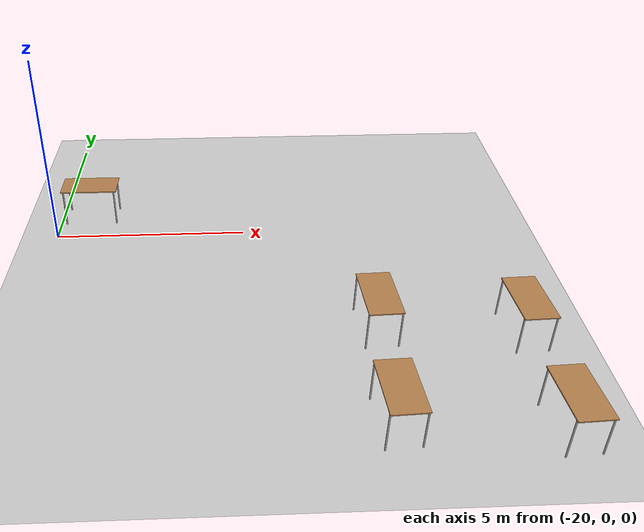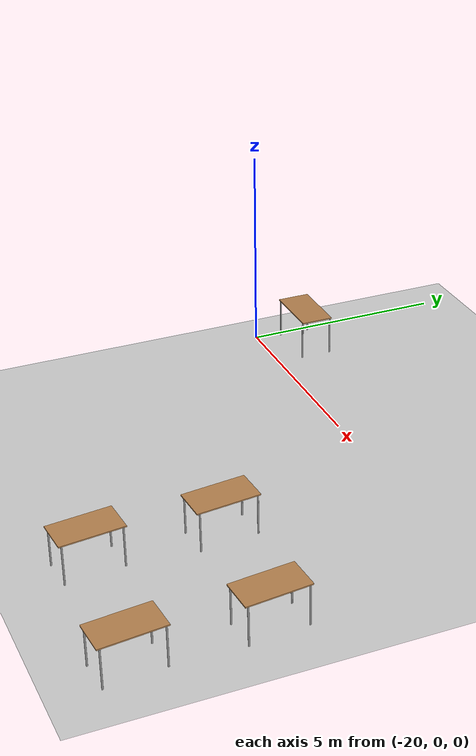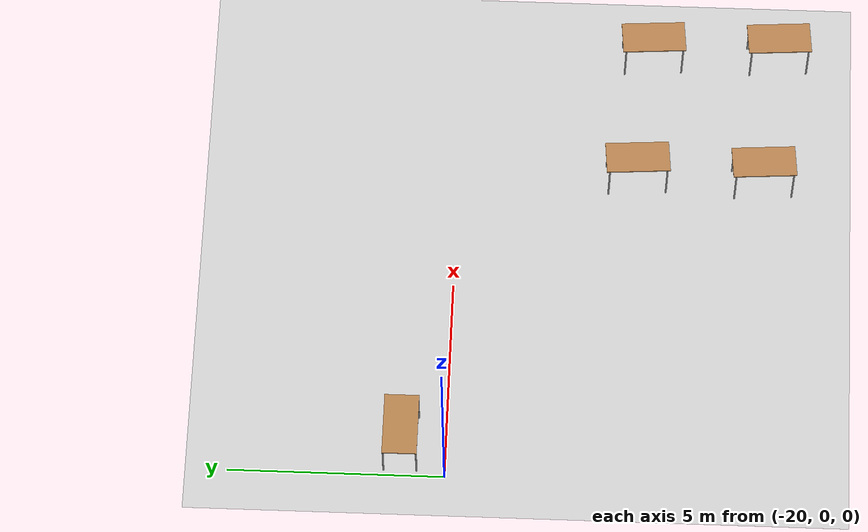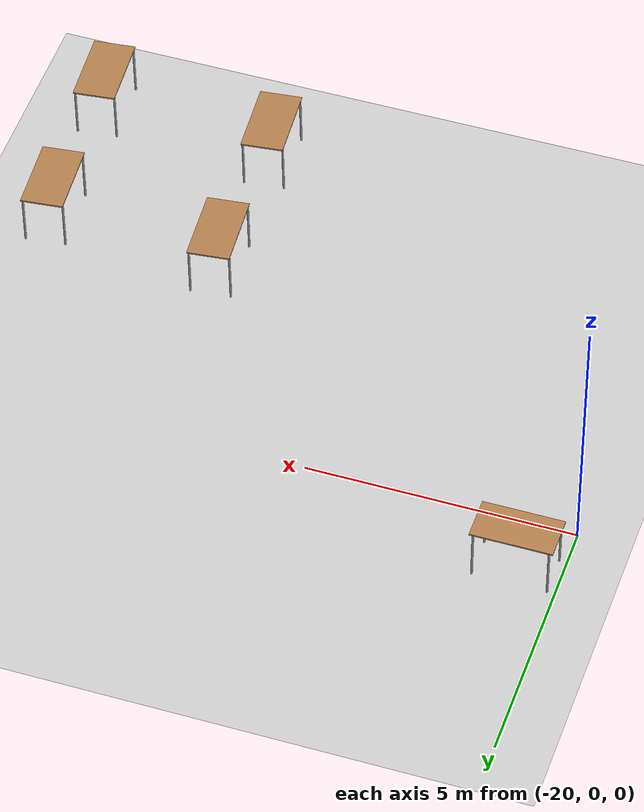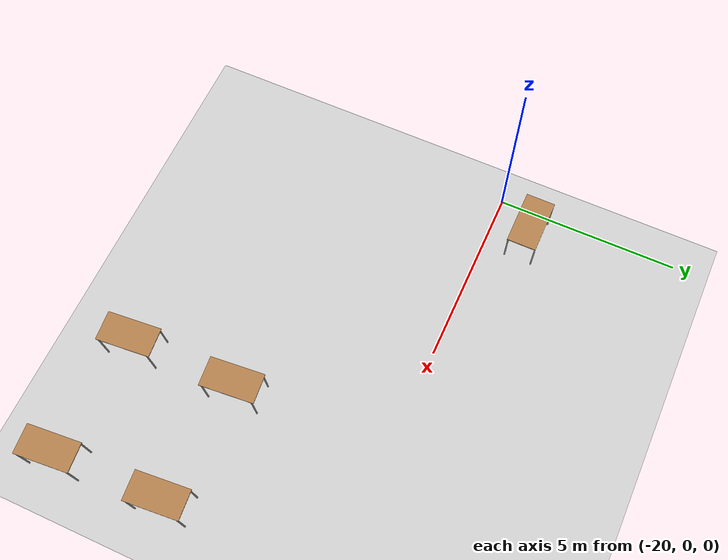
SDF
<sdf version="1.6">
 <world name="default">
  <model name="ground_plane">
   <static>1</static>
   <link name="link">
    <collision name="collision">
     <geometry><plane><normal>0 0 1</normal><size>100 100</size></plane></geometry>
     <surface><friction><ode><mu>100</mu><mu2>50</mu2></ode></friction></surface>
    </collision>
    <visual name="visual">
     <cast_shadows>0</cast_shadows>
     <geometry><plane><normal>0 0 1</normal><size>100 100</size></plane></geometry>
     <material>
      <script><uri>file://media/materials/scripts/gazebo.material</uri><name>Gazebo/Grey</name></script>
     </material>
    </visual>
   </link>
  </model>
  <model name="table">
   <static>1</static>
   <link name="link">
    <collision name="surface">
     <pose>0 0 1 0 -0 0</pose>
     <geometry><box><size>1.5 0.8 0.03</size></box></geometry>
     <surface><friction><ode><mu>0.6</mu><mu2>0.6</mu2></ode></friction></surface>
    </collision>
    <visual name="visual1">
     <pose>0 0 1 0 -0 0</pose>
     <geometry><box><size>1.5 0.8 0.03</size></box></geometry>
     <material>
      <script><uri>file://media/materials/scripts/gazebo.material</uri><name>Gazebo/Wood</name></script>
     </material>
    </visual>
    <collision name="front_left_leg">
     <pose>0.68 0.38 0.5 0 -0 0</pose>
     <geometry><cylinder><radius>0.02</radius><length>1</length></cylinder></geometry>
    </collision>
    <visual name="front_left_leg">
     <pose>0.68 0.38 0.5 0 -0 0</pose>
     <geometry><cylinder><radius>0.02</radius><length>1</length></cylinder></geometry>
     <material>
      <script><uri>file://media/materials/scripts/gazebo.material</uri><name>Gazebo/Grey</name></script>
     </material>
    </visual>
    <collision name="front_right_leg">
     <pose>0.68 -0.38 0.5 0 -0 0</pose>
     <geometry><cylinder><radius>0.02</radius><length>1</length></cylinder></geometry>
    </collision>
    <visual name="front_right_leg">
     <pose>0.68 -0.38 0.5 0 -0 0</pose>
     <geometry><cylinder><radius>0.02</radius><length>1</length></cylinder></geometry>
     <material>
      <script><uri>file://media/materials/scripts/gazebo.material</uri><name>Gazebo/Grey</name></script>
     </material>
    </visual>
    <collision name="back_right_leg">
     <pose>-0.68 -0.38 0.5 0 -0 0</pose>
     <geometry><cylinder><radius>0.02</radius><length>1</length></cylinder></geometry>
    </collision>
    <visual name="back_right_leg">
     <pose>-0.68 -0.38 0.5 0 -0 0</pose>
     <geometry><cylinder><radius>0.02</radius><length>1</length></cylinder></geometry>
     <material>
      <script><uri>file://media/materials/scripts/gazebo.material</uri><name>Gazebo/Grey</name></script>
     </material>
    </visual>
    <collision name="back_left_leg">
     <pose>-0.68 0.38 0.5 0 -0 0</pose>
     <geometry><cylinder><radius>0.02</radius><length>1</length></cylinder></geometry>
    </collision>
    <visual name="back_left_leg">
     <pose>-0.68 0.38 0.5 0 -0 0</pose>
     <geometry><cylinder><radius>0.02</radius><length>1</length></cylinder></geometry>
     <material>
      <script><uri>file://media/materials/scripts/gazebo.material</uri><name>Gazebo/Grey</name></script>
     </material>
    </visual>
   </link>
   <pose>-11.9859 -7.18846 0 0.032441 -0.024996 1.64932</pose>
  </model>
  <model name="table_clone">
   <static>1</static>
   <link name="link">
    <collision name="surface">
     <pose>0 0 1 0 -0 0</pose>
     <geometry><box><size>1.5 0.8 0.03</size></box></geometry>
     <surface><friction><ode><mu>0.6</mu><mu2>0.6</mu2></ode></friction></surface>
    </collision>
    <visual name="visual1">
     <pose>0 0 1 0 -0 0</pose>
     <geometry><box><size>1.5 0.8 0.03</size></box></geometry>
     <material>
      <script><uri>file://media/materials/scripts/gazebo.material</uri><name>Gazebo/Wood</name></script>
     </material>
    </visual>
    <collision name="front_left_leg">
     <pose>0.68 0.38 0.5 0 -0 0</pose>
     <geometry><cylinder><radius>0.02</radius><length>1</length></cylinder></geometry>
    </collision>
    <visual name="front_left_leg">
     <pose>0.68 0.38 0.5 0 -0 0</pose>
     <geometry><cylinder><radius>0.02</radius><length>1</length></cylinder></geometry>
     <material>
      <script><uri>file://media/materials/scripts/gazebo.material</uri><name>Gazebo/Grey</name></script>
     </material>
    </visual>
    <collision name="front_right_leg">
     <pose>0.68 -0.38 0.5 0 -0 0</pose>
     <geometry><cylinder><radius>0.02</radius><length>1</length></cylinder></geometry>
    </collision>
    <visual name="front_right_leg">
     <pose>0.68 -0.38 0.5 0 -0 0</pose>
     <geometry><cylinder><radius>0.02</radius><length>1</length></cylinder></geometry>
     <material>
      <script><uri>file://media/materials/scripts/gazebo.material</uri><name>Gazebo/Grey</name></script>
     </material>
    </visual>
    <collision name="back_right_leg">
     <pose>-0.68 -0.38 0.5 0 -0 0</pose>
     <geometry><cylinder><radius>0.02</radius><length>1</length></cylinder></geometry>
    </collision>
    <visual name="back_right_leg">
     <pose>-0.68 -0.38 0.5 0 -0 0</pose>
     <geometry><cylinder><radius>0.02</radius><length>1</length></cylinder></geometry>
     <material>
      <script><uri>file://media/materials/scripts/gazebo.material</uri><name>Gazebo/Grey</name></script>
     </material>
    </visual>
    <collision name="back_left_leg">
     <pose>-0.68 0.38 0.5 0 -0 0</pose>
     <geometry><cylinder><radius>0.02</radius><length>1</length></cylinder></geometry>
    </collision>
    <visual name="back_left_leg">
     <pose>-0.68 0.38 0.5 0 -0 0</pose>
     <geometry><cylinder><radius>0.02</radius><length>1</length></cylinder></geometry>
     <material>
      <script><uri>file://media/materials/scripts/gazebo.material</uri><name>Gazebo/Grey</name></script>
     </material>
    </visual>
   </link>
   <pose>-11.9664 -4.21057 0 0.032441 -0.024996 1.64932</pose>
  </model>
  <model name="table_clone_0">
   <static>1</static>
   <link name="link">
    <collision name="surface">
     <pose>0 0 1 0 -0 0</pose>
     <geometry><box><size>1.5 0.8 0.03</size></box></geometry>
     <surface><friction><ode><mu>0.6</mu><mu2>0.6</mu2></ode></friction></surface>
    </collision>
    <visual name="visual1">
     <pose>0 0 1 0 -0 0</pose>
     <geometry><box><size>1.5 0.8 0.03</size></box></geometry>
     <material>
      <script><uri>file://media/materials/scripts/gazebo.material</uri><name>Gazebo/Wood</name></script>
     </material>
    </visual>
    <collision name="front_left_leg">
     <pose>0.68 0.38 0.5 0 -0 0</pose>
     <geometry><cylinder><radius>0.02</radius><length>1</length></cylinder></geometry>
    </collision>
    <visual name="front_left_leg">
     <pose>0.68 0.38 0.5 0 -0 0</pose>
     <geometry><cylinder><radius>0.02</radius><length>1</length></cylinder></geometry>
     <material>
      <script><uri>file://media/materials/scripts/gazebo.material</uri><name>Gazebo/Grey</name></script>
     </material>
    </visual>
    <collision name="front_right_leg">
     <pose>0.68 -0.38 0.5 0 -0 0</pose>
     <geometry><cylinder><radius>0.02</radius><length>1</length></cylinder></geometry>
    </collision>
    <visual name="front_right_leg">
     <pose>0.68 -0.38 0.5 0 -0 0</pose>
     <geometry><cylinder><radius>0.02</radius><length>1</length></cylinder></geometry>
     <material>
      <script><uri>file://media/materials/scripts/gazebo.material</uri><name>Gazebo/Grey</name></script>
     </material>
    </visual>
    <collision name="back_right_leg">
     <pose>-0.68 -0.38 0.5 0 -0 0</pose>
     <geometry><cylinder><radius>0.02</radius><length>1</length></cylinder></geometry>
    </collision>
    <visual name="back_right_leg">
     <pose>-0.68 -0.38 0.5 0 -0 0</pose>
     <geometry><cylinder><radius>0.02</radius><length>1</length></cylinder></geometry>
     <material>
      <script><uri>file://media/materials/scripts/gazebo.material</uri><name>Gazebo/Grey</name></script>
     </material>
    </visual>
    <collision name="back_left_leg">
     <pose>-0.68 0.38 0.5 0 -0 0</pose>
     <geometry><cylinder><radius>0.02</radius><length>1</length></cylinder></geometry>
    </collision>
    <visual name="back_left_leg">
     <pose>-0.68 0.38 0.5 0 -0 0</pose>
     <geometry><cylinder><radius>0.02</radius><length>1</length></cylinder></geometry>
     <material>
      <script><uri>file://media/materials/scripts/gazebo.material</uri><name>Gazebo/Grey</name></script>
     </material>
    </visual>
   </link>
   <pose>-8.57256 -7.50729 0 0.032441 -0.024996 1.64932</pose>
  </model>
  <model name="table_clone_1">
   <static>1</static>
   <link name="link">
    <collision name="surface">
     <pose>0 0 1 0 -0 0</pose>
     <geometry><box><size>1.5 0.8 0.03</size></box></geometry>
     <surface><friction><ode><mu>0.6</mu><mu2>0.6</mu2></ode></friction></surface>
    </collision>
    <visual name="visual1">
     <pose>0 0 1 0 -0 0</pose>
     <geometry><box><size>1.5 0.8 0.03</size></box></geometry>
     <material>
      <script><uri>file://media/materials/scripts/gazebo.material</uri><name>Gazebo/Wood</name></script>
     </material>
    </visual>
    <collision name="front_left_leg">
     <pose>0.68 0.38 0.5 0 -0 0</pose>
     <geometry><cylinder><radius>0.02</radius><length>1</length></cylinder></geometry>
    </collision>
    <visual name="front_left_leg">
     <pose>0.68 0.38 0.5 0 -0 0</pose>
     <geometry><cylinder><radius>0.02</radius><length>1</length></cylinder></geometry>
     <material>
      <script><uri>file://media/materials/scripts/gazebo.material</uri><name>Gazebo/Grey</name></script>
     </material>
    </visual>
    <collision name="front_right_leg">
     <pose>0.68 -0.38 0.5 0 -0 0</pose>
     <geometry><cylinder><radius>0.02</radius><length>1</length></cylinder></geometry>
    </collision>
    <visual name="front_right_leg">
     <pose>0.68 -0.38 0.5 0 -0 0</pose>
     <geometry><cylinder><radius>0.02</radius><length>1</length></cylinder></geometry>
     <material>
      <script><uri>file://media/materials/scripts/gazebo.material</uri><name>Gazebo/Grey</name></script>
     </material>
    </visual>
    <collision name="back_right_leg">
     <pose>-0.68 -0.38 0.5 0 -0 0</pose>
     <geometry><cylinder><radius>0.02</radius><length>1</length></cylinder></geometry>
    </collision>
    <visual name="back_right_leg">
     <pose>-0.68 -0.38 0.5 0 -0 0</pose>
     <geometry><cylinder><radius>0.02</radius><length>1</length></cylinder></geometry>
     <material>
      <script><uri>file://media/materials/scripts/gazebo.material</uri><name>Gazebo/Grey</name></script>
     </material>
    </visual>
    <collision name="back_left_leg">
     <pose>-0.68 0.38 0.5 0 -0 0</pose>
     <geometry><cylinder><radius>0.02</radius><length>1</length></cylinder></geometry>
    </collision>
    <visual name="back_left_leg">
     <pose>-0.68 0.38 0.5 0 -0 0</pose>
     <geometry><cylinder><radius>0.02</radius><length>1</length></cylinder></geometry>
     <material>
      <script><uri>file://media/materials/scripts/gazebo.material</uri><name>Gazebo/Grey</name></script>
     </material>
    </visual>
   </link>
   <pose>-8.64946 -4.51386 0 0.032441 -0.024996 1.64932</pose>
  </model>
  <model name="table_4">
   <static>1</static>
   <link name="link">
    <collision name="surface">
     <pose>0 0 1 0 -0 0</pose>
     <geometry><box><size>1.5 0.8 0.03</size></box></geometry>
     <surface><friction><ode><mu>0.6</mu><mu2>0.6</mu2></ode></friction></surface>
    </collision>
    <visual name="visual1">
     <pose>0 0 1 0 -0 0</pose>
     <geometry><box><size>1.5 0.8 0.03</size></box></geometry>
     <material>
      <script><uri>file://media/materials/scripts/gazebo.material</uri><name>Gazebo/Wood</name></script>
     </material>
    </visual>
    <collision name="front_left_leg">
     <pose>0.68 0.38 0.5 0 -0 0</pose>
     <geometry><cylinder><radius>0.02</radius><length>1</length></cylinder></geometry>
    </collision>
    <visual name="front_left_leg">
     <pose>0.68 0.38 0.5 0 -0 0</pose>
     <geometry><cylinder><radius>0.02</radius><length>1</length></cylinder></geometry>
     <material>
      <script><uri>file://media/materials/scripts/gazebo.material</uri><name>Gazebo/Grey</name></script>
     </material>
    </visual>
    <collision name="front_right_leg">
     <pose>0.68 -0.38 0.5 0 -0 0</pose>
     <geometry><cylinder><radius>0.02</radius><length>1</length></cylinder></geometry>
    </collision>
    <visual name="front_right_leg">
     <pose>0.68 -0.38 0.5 0 -0 0</pose>
     <geometry><cylinder><radius>0.02</radius><length>1</length></cylinder></geometry>
     <material>
      <script><uri>file://media/materials/scripts/gazebo.material</uri><name>Gazebo/Grey</name></script>
     </material>
    </visual>
    <collision name="back_right_leg">
     <pose>-0.68 -0.38 0.5 0 -0 0</pose>
     <geometry><cylinder><radius>0.02</radius><length>1</length></cylinder></geometry>
    </collision>
    <visual name="back_right_leg">
     <pose>-0.68 -0.38 0.5 0 -0 0</pose>
     <geometry><cylinder><radius>0.02</radius><length>1</length></cylinder></geometry>
     <material>
      <script><uri>file://media/materials/scripts/gazebo.material</uri><name>Gazebo/Grey</name></script>
     </material>
    </visual>
    <collision name="back_left_leg">
     <pose>-0.68 0.38 0.5 0 -0 0</pose>
     <geometry><cylinder><radius>0.02</radius><length>1</length></cylinder></geometry>
    </collision>
    <visual name="back_left_leg">
     <pose>-0.68 0.38 0.5 0 -0 0</pose>
     <geometry><cylinder><radius>0.02</radius><length>1</length></cylinder></geometry>
     <material>
      <script><uri>file://media/materials/scripts/gazebo.material</uri><name>Gazebo/Grey</name></script>
     </material>
    </visual>
   </link>
   <pose>-19.1771 1.03055 0 0 -0 0</pose>
  </model>
 </world>
</sdf>
